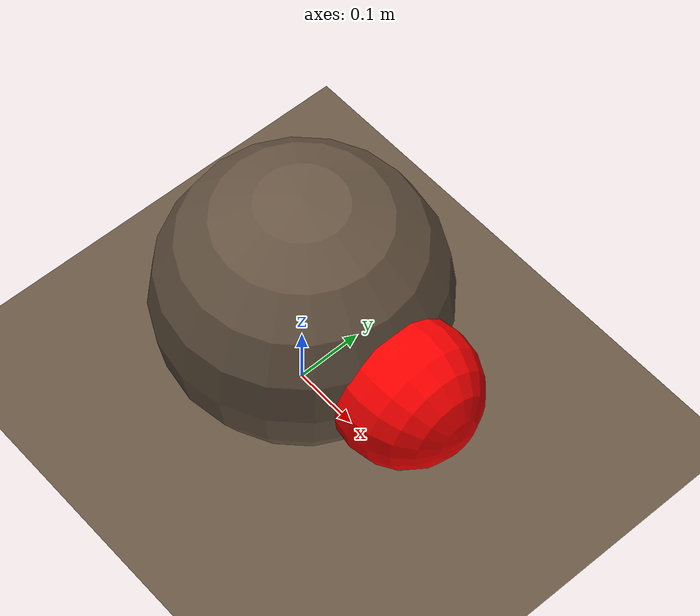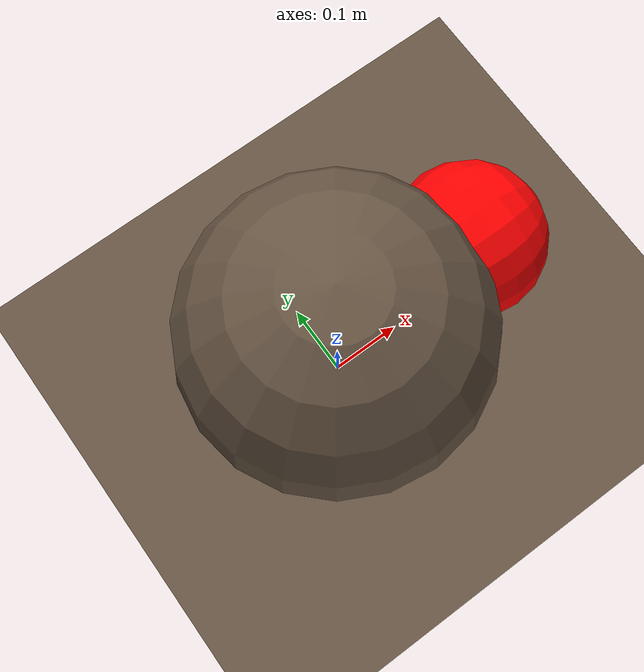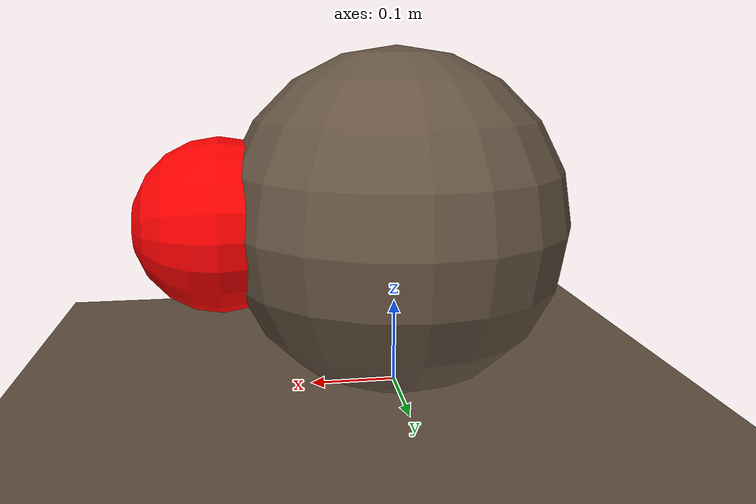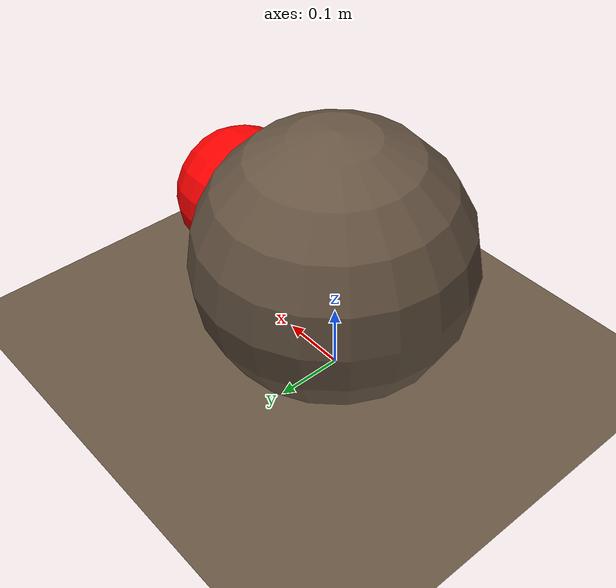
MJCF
<mujoco model="discrete_fish">
  <compiler angle="degree" coordinate="local" inertiafromgeom="true"/>
  <option timestep="0.01" iterations="4" />
  <custom>
    <!-- brax custom params -->
    <numeric data="0.0 0.0 0.0" name="init_qpos"/>
    <numeric data="1000" name="constraint_limit_stiffness"/>
    <numeric data="4000" name="constraint_stiffness"/>
    <numeric data="10" name="constraint_ang_damping"/>
    <numeric data="20" name="constraint_vel_damping"/>
    <numeric data="0.5" name="joint_scale_pos"/>
    <numeric data="0.2" name="joint_scale_ang"/>
    <numeric data="0.0" name="ang_damping"/>
    <numeric data="1" name="spring_mass_scale"/>
    <numeric data="1" name="spring_inertia_scale"/>
    <numeric data="15" name="solver_maxls"/>
  </custom>
  <default>
    <joint armature="1" damping="1" limited="true"/>
    <geom contype="0" conaffinity="0" condim="3" density="5.0" friction="1 0.5 0.5" rgba="0.4 0.33 0.26 1.0"/>
  </default>
  <asset>
    <texture builtin="gradient" height="100" rgb1="1 1 1" rgb2="0 0 0" type="skybox" width="100"/>
    <texture builtin="flat" height="1278" mark="cross" markrgb="1 1 1" name="texgeom" random="0.01" rgb1="0.8 0.6 0.4" rgb2="0.8 0.6 0.4" type="cube" width="127"/>
    <texture builtin="checker" height="100" name="texplane" rgb1="0 0 0" rgb2="0.8 0.8 0.8" type="2d" width="100"/>
    <material name="MatPlane" reflectance="0.5" shininess="1" specular="1" texrepeat="60 60" texture="texplane"/>
    <material name="geom" texture="texgeom" texuniform="true"/>
  </asset>
  <worldbody>
    <light cutoff="100" diffuse="1 1 1" dir="-0 0 -1.3" directional="true" exponent="1" pos="0 0 1.3" specular=".1 .1 .1"/>
    <geom conaffinity="1" condim="3" material="MatPlane" name="floor" pos="0 0 0" size="4000 4000 40" type="plane"/>
    <body name="torso" pos="0 0 0.2">
      <geom name="torso_geom" size="0.2" type="sphere" contype="2" conaffinity="2"/>
      <joint axis="1 0 0"  name="move_joint_x" pos="0 0 0" range="-180 180" type="slide"/>
      <joint axis="0 1 0"  name="move_joint_y" pos="0 0 0" range="-180 180" type="slide"/>
      <joint axis="0 0 1"  name="rotate_joint" pos="0 0 0" range="-360 360" type="hinge"/>
      <body name="camera" pos="0.2 0.0 0" quat="0.70710677 0 -0.7071068 0" >
        <geom name="sensor_0_geom" size="0.1" type="sphere"  rgba="1 0 0 1"/> <!-- Blue color -->
      </body>

    </body>
  </worldbody>
    <actuator>
      <motor ctrllimited="true" ctrlrange="0.0 1.0" joint="move_joint_y" gear="50.0" forcelimited="true" forcerange="0.0 .1"/>
    <motor ctrllimited="true" ctrlrange="0.0 1.0" joint="move_joint_x" gear="50.0" forcelimited="true" forcerange="0.0 .1"/>
    <motor ctrllimited="true" ctrlrange="0.0 1.0" joint="move_joint_x" gear="-50.0" forcelimited="true" forcerange="0.0 .1"/>
    <motor ctrllimited="true" ctrlrange="0.0 1.0" joint="move_joint_y" gear="-50.0" forcelimited="true" forcerange="0.0 .1"/>
  </actuator>

</mujoco>
